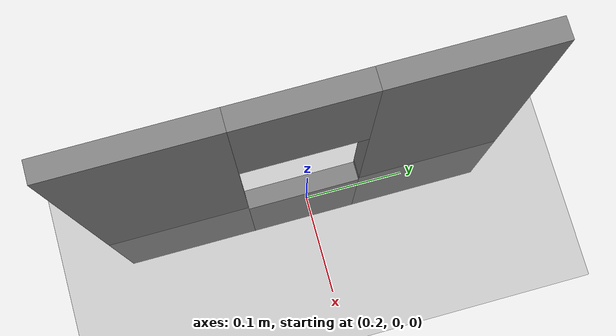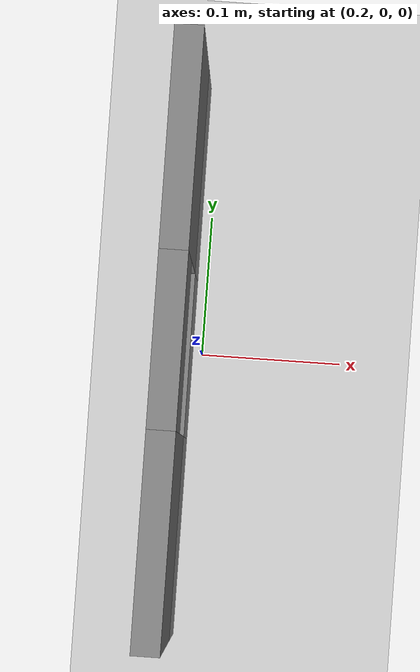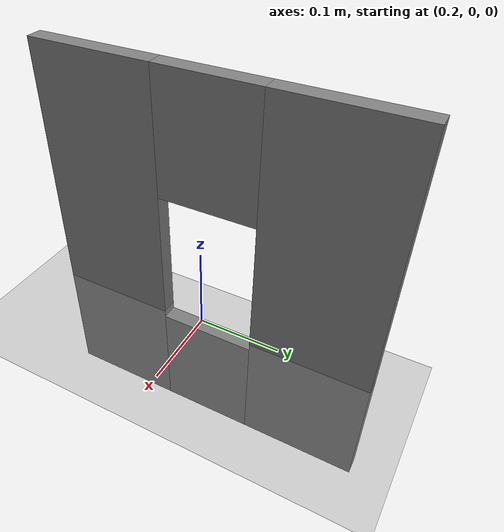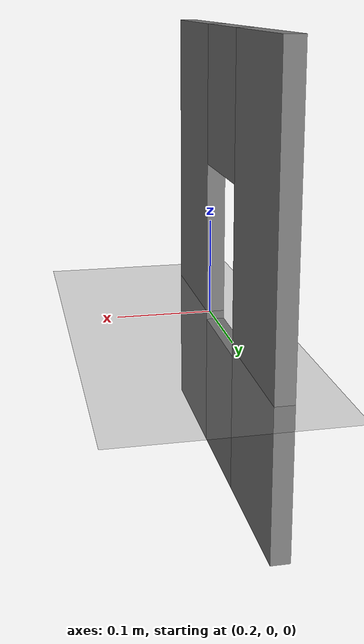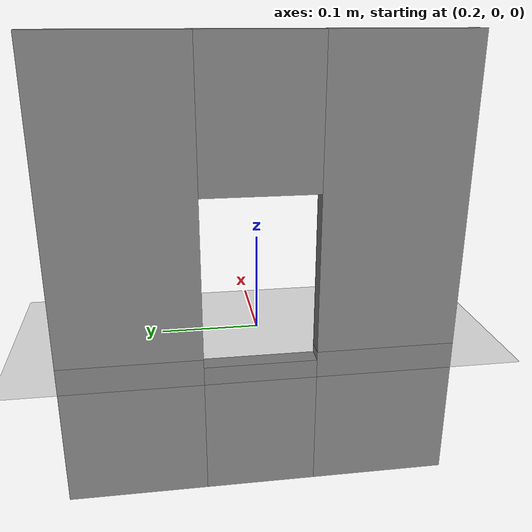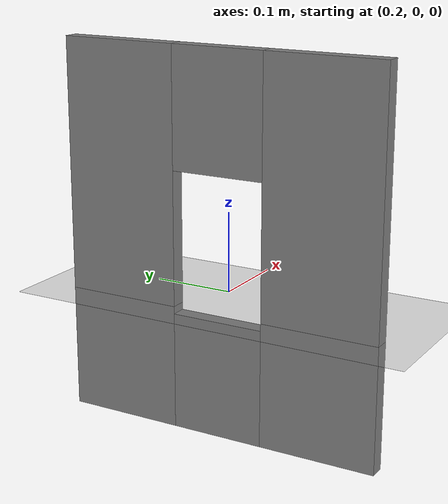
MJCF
<?xml version='1.0' encoding='utf-8'?>
<mujoco model="reach_window_dev">
  <option gravity="0.0 0.0 -9.81" />
  <worldbody>
    <geom name="floor" type="plane" size="2.0 2.0 0.1" pos="0.0 0.0 -0.02" contype="0" conaffinity="1" />
    <geom name="aperture_left" type="box" size="0.01 0.075 0.24" pos="0.18 -0.135 0.06" contype="0" conaffinity="1" />
    <geom name="aperture_right" type="box" size="0.01 0.075 0.24" pos="0.18 0.135 0.06" contype="0" conaffinity="1" />
    <geom name="aperture_bottom" type="box" size="0.01 0.06 0.075" pos="0.18 0.0 -0.105" contype="0" conaffinity="1" />
    <geom name="aperture_top" type="box" size="0.01 0.06 0.075" pos="0.18 0.0 0.22499999999999998" contype="0" conaffinity="1" />
    <light pos="0.0 0.0 2.0" dir="0.0 0.0 -1.0" />
  </worldbody>
</mujoco>
